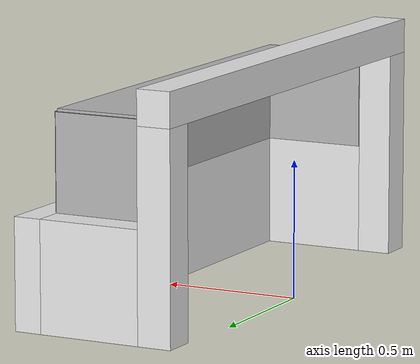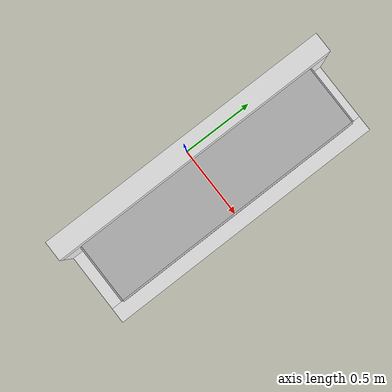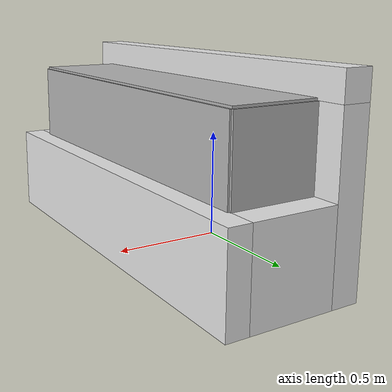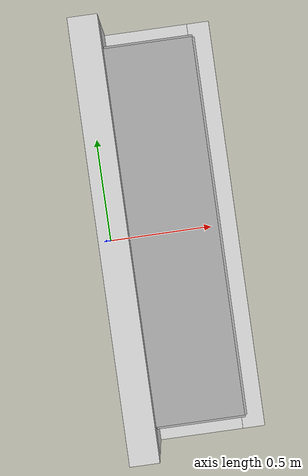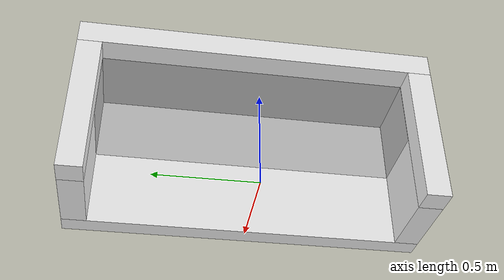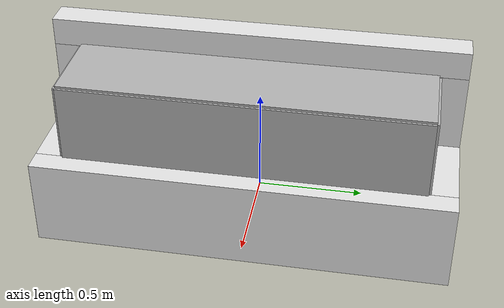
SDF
<?xml version="1.0" ?>
<sdf version="1.4">
  <model name="RoboCup15_MSL_Goal">
    <static>true</static>

    <link name="left_post">
      <pose>0.0625 0.8625 0.385 0 0 0</pose>
      <collision name="collision">
        <geometry>
          <box><size>0.125 0.125 0.75</size></box>
        </geometry>
      </collision>
      <visual name="visual">
        <geometry>
          <box><size>0.125 0.125 0.75</size></box>
        </geometry>
        <material>
          <script>
            <uri>file://media/materials/scripts/gazebo.material</uri>
            <name>Gazebo/White</name>
          </script>
        </material>
      </visual>
    </link>

    <link name="right_post">
      <pose>0.0625 -0.8625 0.385 0 0 0</pose>
      <collision name="collision">
        <geometry>
          <box><size>0.125 0.125 0.75</size></box>
        </geometry>
      </collision>
      <visual name="visual">
        <geometry>
          <box><size>0.125 0.125 0.75</size></box>
        </geometry>
        <material>
          <script>
            <uri>file://media/materials/scripts/gazebo.material</uri>
            <name>Gazebo/White</name>
          </script>
        </material>
      </visual>
    </link>

    <link name="crossbar">
      <pose>0.0625 0 0.8225 0 0 0</pose>
      <collision name="collision">
        <geometry>
          <box><size>0.125 1.85 0.125</size></box>
        </geometry>
      </collision>
      <visual name="visual">
        <geometry>
          <box><size>0.125 1.85 0.125</size></box>
        </geometry>
        <material>
          <script>
            <uri>file://media/materials/scripts/gazebo.material</uri>
            <name>Gazebo/White</name>
          </script>
        </material>
      </visual>
    </link>

    <link name="left_support_horiz_lower">
      <pose>0.3125 0.8625 0.21 0 0 0</pose>
      <collision name="collision">
        <geometry>
          <box><size>0.375 0.125 0.4</size></box>
        </geometry>
      </collision>
      <visual name="visual">
        <geometry>
          <box><size>0.375 0.125 0.4</size></box>
        </geometry>
        <material>
          <script>
            <uri>file://media/materials/scripts/gazebo.material</uri>
            <name>Gazebo/White</name>
          </script>
        </material>
      </visual>
    </link>

    <link name="right_support_horiz_lower">
      <pose>0.3125 -0.8625 0.21 0 0 0</pose>
      <collision name="collision">
        <geometry>
          <box><size>0.375 0.125 0.4</size></box>
        </geometry>
      </collision>
      <visual name="visual">
        <geometry>
          <box><size>0.375 0.125 0.4</size></box>
        </geometry>
        <material>
          <script>
            <uri>file://media/materials/scripts/gazebo.material</uri>
            <name>Gazebo/White</name>
          </script>
        </material>
      </visual>
    </link>

        <link name="center_support_horiz_lower">
      <pose>0.55 0 0.21 0 0 0</pose>
      <collision name="collision">
        <geometry>
          <box><size>0.10 1.85 0.4</size></box>
        </geometry>
      </collision>
      <visual name="visual">
        <geometry>
          <box><size>0.10 1.85 0.4</size></box>
        </geometry>
        <material>
          <script>
            <uri>file://media/materials/scripts/gazebo.material</uri>
            <name>Gazebo/White</name>
          </script>
        </material>
      </visual>
    </link>

    <link name="center_net">
      <pose>0.505 0 0.585 0 0 0</pose>
      <collision name="collision">
        <geometry>
          <box><size>0.01 1.6 0.35</size></box>
        </geometry>
      </collision>
      <visual name="visual">
        <geometry>
          <box><size>0.01 1.6 0.35</size></box>
        </geometry>
        <material>
          <script>
            <uri>file://materials/scripts/</uri>
            <uri>file://materials/textures/</uri>
            <name>RoboCup/Net</name>
          </script>
        </material>
      </visual>
    </link>

    <link name="left_net">
      <pose>0.315 0.805 0.585 0 0 0</pose>
      <collision name="collision">
        <geometry>
          <box>
            <size>0.375 0.01 0.35</size>
          </box>
        </geometry>
      </collision>
      <visual name="visual">
        <geometry>
          <box>
            <size>0.375 0.01 0.35</size>
          </box>
        </geometry>
        <material>
          <script>
            <uri>file://materials/scripts/</uri>
            <uri>file://materials/textures/</uri>
            <name>RoboCup/Net</name>
          </script>
        </material>
      </visual>
    </link>

    <link name="right_net">
      <pose>0.315 -0.805 0.585 0 0 0</pose>
      <collision name="collision">
        <geometry>
          <box>
            <size>0.375 0.01 0.35</size>
          </box>
        </geometry>
      </collision>
      <visual name="visual">
        <geometry>
          <box>
            <size>0.375 0.01 0.35</size>
          </box>
        </geometry>
        <material>
          <script>
            <uri>file://materials/scripts/</uri>
            <uri>file://materials/textures/</uri>
            <name>RoboCup/Net</name>
          </script>
        </material>
      </visual>
    </link>

    <link name='upper_net'>
      <pose>0.3125 0 0.765 0 0 0</pose>
      <collision name='collision'>
        <geometry>
          <box><size>0.375 1.6 0.01</size></box>
        </geometry>
        <max_contacts>10</max_contacts>
      </collision>
      <visual name='visual'>
        <geometry>
          <box><size>0.375 1.6 0.01</size></box>
        </geometry>
        <material>
          <script>
            <uri>file://materials/scripts/</uri>
            <uri>file://materials/textures/</uri>
            <name>RoboCup/Net</name>
          </script>
        </material>
      </visual>
    </link>

  </model>
</sdf>
